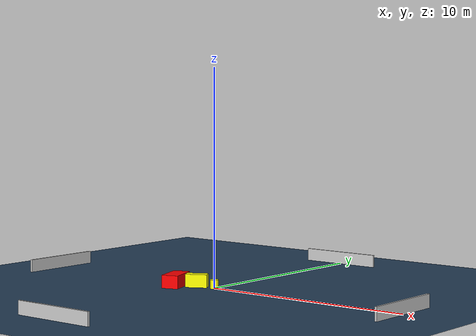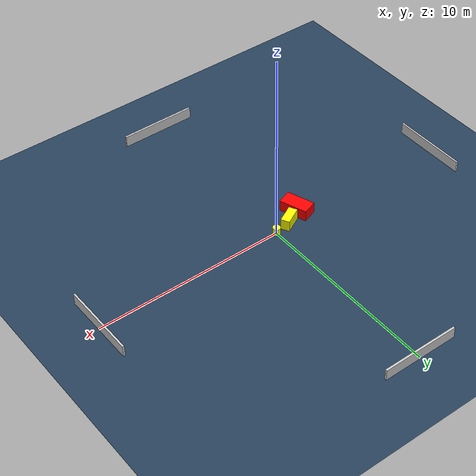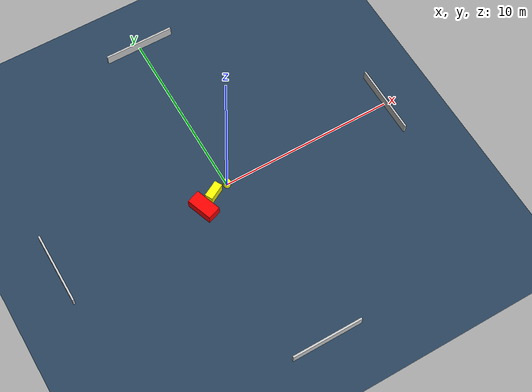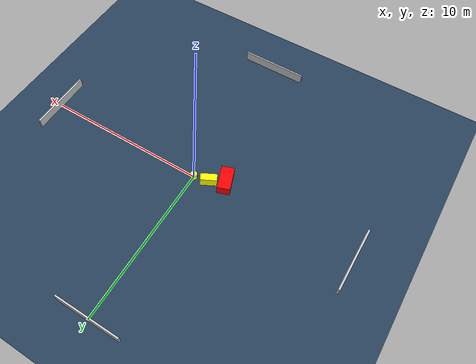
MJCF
<?xml version="1.0" ?>
<mujoco model="generated_environment">
  <option timestep="0.01" integrator="RK4" cone="elliptic"/>
  <default>
    <geom density="1"/>
  </default>
  <asset>
    <texture builtin="gradient" height="3072" name="skybox" rgb1="0.3 0.5 0.7" rgb2="0 0 0" type="skybox" width="512"/>
    <texture builtin="checker" height="300" name="groundplane" rgb1="0.2 0.3 0.4" rgb2="0.1 0.2 0.3" type="2d" width="300"/>
    <material name="groundplane" reflectance="0.2" texrepeat="5 5" texture="groundplane"/>
  </asset>
  <worldbody>
    <light dir="0 0 -1" directional="true" pos="0 0 1.5"/>
    <geom condim="3" friction="0.5 0.005 0.001" material="groundplane" name="floor" pos="0 0 0" size="0 0 0.05" type="plane"/>
    <body name="walls">
      <geom name="wall_1" condim="4" pos="-10.0 0.0 0.3" rgba="0.800000011920929 0.800000011920929 0.800000011920929 1.0" size="0.05 2.0 0.3" type="box"/>
      <geom name="wall_2" condim="4" pos="10.0 0.0 0.3" rgba="0.800000011920929 0.800000011920929 0.800000011920929 1.0" size="0.05 2.0 0.3" type="box"/>
      <geom name="wall_3" condim="4" pos="0.0 -10.0 0.3" rgba="0.800000011920929 0.800000011920929 0.800000011920929 1.0" size="2.0 0.05 0.3" type="box"/>
      <geom name="wall_4" condim="4" pos="0.0 10.0 0.3" rgba="0.800000011920929 0.800000011920929 0.800000011920929 1.0" size="2.0 0.05 0.3" type="box"/>
    </body>
    <body name="robot">
      <joint name="joint_x" type="slide" pos="0 0 0" axis="1 0 0"/>
      <joint name="joint_y" type="slide" pos="0 0 0" axis="0 1 0"/>
      <geom name="robot" type="cylinder" pos="0.0 0.0 0.2" size="0.2 0.2 0.0" mass="5.0" friction="1.0 0.005 0.0001" condim="4" rgba="1.0 1.0 0.0 1.0"/>
    </body>
    <body name="obstacle_1_movable">
      <geom name="obstacle_1_movable" condim="4" pos="-0.903998274822265 -0.16729187480254523 0.3" euler="0 0 27.99350729320222" friction="0.0 0.005 0.001" rgba="1.0 1.0 0.0 1.0" size="0.4941105957720444 0.22715018935617248 0.3" type="box" mass="0.1"/>
      <joint type="free"/>
    </body>
    <body name="obstacle_2_static">
      <geom name="obstacle_2_static" condim="4" pos="-1.7666702368960827 -0.6458871648674318 0.3" euler="0 0 289.38626049358516" friction="0.0 0.005 0.001" rgba="1.0 0.0 0.0 1.0" size="0.7439070578756972 0.3864800281240809 0.3" type="box"/>
    </body>
  </worldbody>
  <actuator>
    <motor name="actuator_x" joint="joint_x" gear="1" ctrlrange="-1 1"/>
    <motor name="actuator_y" joint="joint_y" gear="1" ctrlrange="-1 1"/>
  </actuator>
</mujoco>
